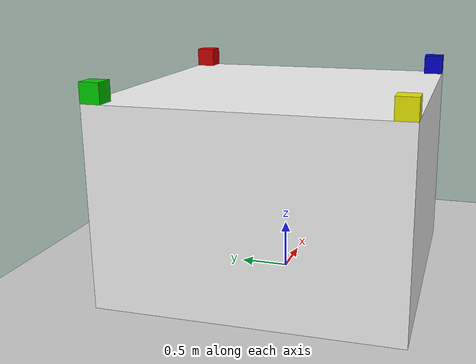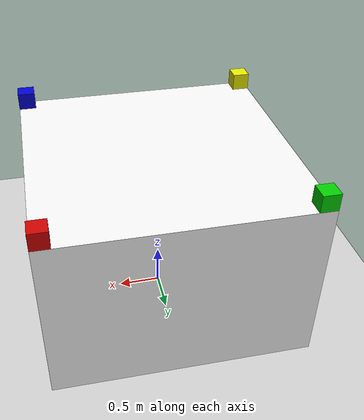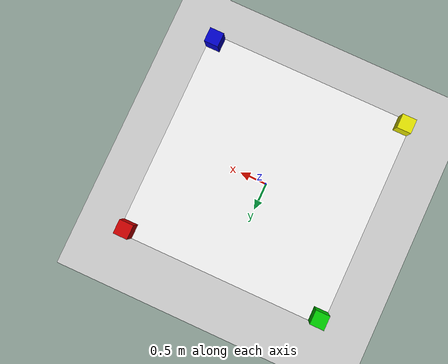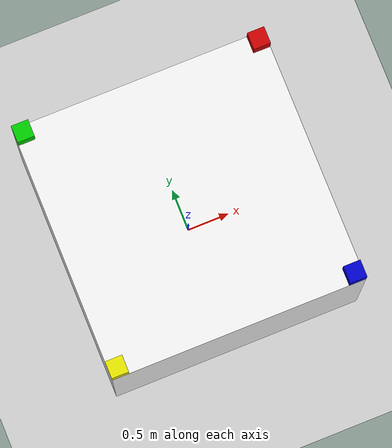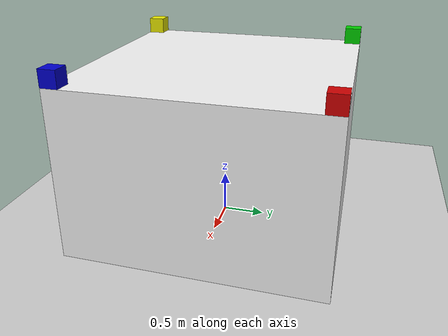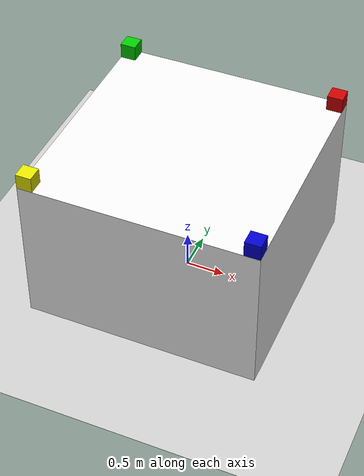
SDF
<?xml version="1.0" ?>

<sdf version="1.6">
  <world name="world_problem2">
    <physics name="4ms" type="ignored">
      <max_step_size>0.004</max_step_size>
      <real_time_factor>1.0</real_time_factor>
    </physics>
    <plugin
      filename="ignition-gazebo-physics-system"
      name="ignition::gazebo::systems::Physics">
    </plugin>
    <plugin
      filename="ignition-gazebo-scene-broadcaster-system"
      name="ignition::gazebo::systems::SceneBroadcaster">
    </plugin>
    <plugin
      filename="ignition-gazebo-user-commands-system"
      name="ignition::gazebo::systems::UserCommands">
    </plugin>
    <plugin
      filename="ignition-gazebo-sensors-system"
      name="ignition::gazebo::systems::Sensors">
      <render_engine>ogre2</render_engine>
    </plugin>
    <plugin
      filename="ignition-gazebo-contact-system"
      name="ignition::gazebo::systems::Contact">
    </plugin>

    <light type="directional" name="sun">
      <cast_shadows>true</cast_shadows>
      <pose>0 0 10 0 0 0</pose>
      <diffuse>0.8 0.8 0.8 1</diffuse>
      <specular>0.2 0.2 0.2 1</specular>
      <attenuation>
        <range>1000</range>
        <constant>0.9</constant>
        <linear>0.01</linear>
        <quadratic>0.001</quadratic>
      </attenuation>
      <direction>-0.5 0.1 -0.9</direction>
    </light>

    <include>
      <uri>model://ground_plane</uri>
    </include>

    <!-- Cubo blanco grande 3x3x2 m, centrado y apoyado en el suelo (centro en z=1.0) -->
    <model name="cubo_blanco">
      <static>true</static>
      <pose>0 0 1.0 0 0 0</pose>
      <link name="cubo_blanco_link">
        <collision name="cubo_blanco_col">
          <geometry>
            <box>
              <size>3 3 2</size>
            </box>
          </geometry>
        </collision>
        <visual name="cubo_blanco_vis">
          <geometry>
            <box>
              <size>3 3 2</size>
            </box>
          </geometry>
          <material>
            <ambient>0.9 0.9 0.9 1</ambient>
            <diffuse>0.95 0.95 0.95 1</diffuse>
            <specular>0.3 0.3 0.3 1</specular>
          </material>
        </visual>
      </link>
    </model>

    <!-- Cubo pequeno ROJO 0.2x0.2x0.2 m, esquina superior (+x, +y) -->
    <!-- Apoyado sobre la cara superior (z = 2 + 0.1) e insertado 0.1 desde el borde -->
    <model name="cubo_rojo">
      <static>true</static>
      <pose>1.4 1.4 2.1 0 0 0</pose>
      <link name="cubo_rojo_link">
        <collision name="cubo_rojo_col">
          <geometry>
            <box>
              <size>0.2 0.2 0.2</size>
            </box>
          </geometry>
        </collision>
        <visual name="cubo_rojo_vis">
          <geometry>
            <box>
              <size>0.2 0.2 0.2</size>
            </box>
          </geometry>
          <material>
            <ambient>0.5 0.0 0.0 1</ambient>
            <diffuse>0.8 0.0 0.0 1</diffuse>
            <specular>0.5 0.1 0.1 1</specular>
          </material>
        </visual>
      </link>
    </model>

    <!-- Cubo pequeno AMARILLO 0.2x0.2x0.2 m, esquina superior opuesta (-x, -y) -->
    <model name="cubo_amarillo">
      <static>true</static>
      <pose>-1.4 -1.4 2.1 0 0 0</pose>
      <link name="cubo_amarillo_link">
        <collision name="cubo_amarillo_col">
          <geometry>
            <box>
              <size>0.2 0.2 0.2</size>
            </box>
          </geometry>
        </collision>
        <visual name="cubo_amarillo_vis">
          <geometry>
            <box>
              <size>0.2 0.2 0.2</size>
            </box>
          </geometry>
          <material>
            <ambient>0.5 0.5 0.0 1</ambient>
            <diffuse>0.9 0.9 0.0 1</diffuse>
            <specular>0.5 0.5 0.1 1</specular>
          </material>
        </visual>
      </link>
    </model>

    <!-- Cubo pequeno AZUL 0.2x0.2x0.2 m, esquina superior (+x, -y) -->
    <model name="cubo_azul">
      <static>true</static>
      <pose>1.4 -1.4 2.1 0 0 0</pose>
      <link name="cubo_azul_link">
        <collision name="cubo_azul_col">
          <geometry>
            <box>
              <size>0.2 0.2 0.2</size>
            </box>
          </geometry>
        </collision>
        <visual name="cubo_azul_vis">
          <geometry>
            <box>
              <size>0.2 0.2 0.2</size>
            </box>
          </geometry>
          <material>
            <ambient>0.0 0.0 0.5 1</ambient>
            <diffuse>0.0 0.0 0.8 1</diffuse>
            <specular>0.1 0.1 0.5 1</specular>
          </material>
        </visual>
      </link>
    </model>

    <!-- Cubo pequeno VERDE 0.2x0.2x0.2 m, esquina superior (-x, +y) -->
    <model name="cubo_verde">
      <static>true</static>
      <pose>-1.4 1.4 2.1 0 0 0</pose>
      <link name="cubo_verde_link">
        <collision name="cubo_verde_col">
          <geometry>
            <box>
              <size>0.2 0.2 0.2</size>
            </box>
          </geometry>
        </collision>
        <visual name="cubo_verde_vis">
          <geometry>
            <box>
              <size>0.2 0.2 0.2</size>
            </box>
          </geometry>
          <material>
            <ambient>0.0 0.5 0.0 1</ambient>
            <diffuse>0.0 0.8 0.0 1</diffuse>
            <specular>0.1 0.5 0.1 1</specular>
          </material>
        </visual>
      </link>
    </model>

  </world>
</sdf>
